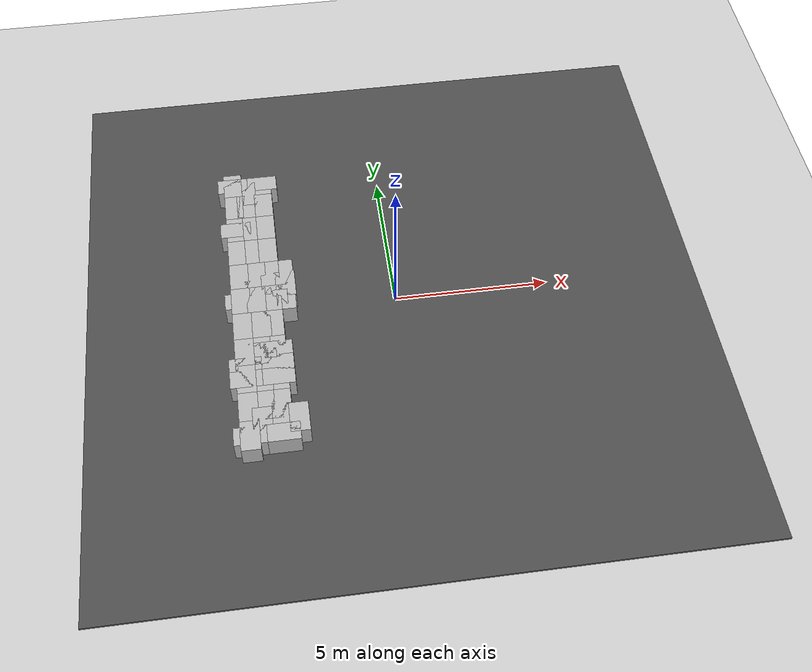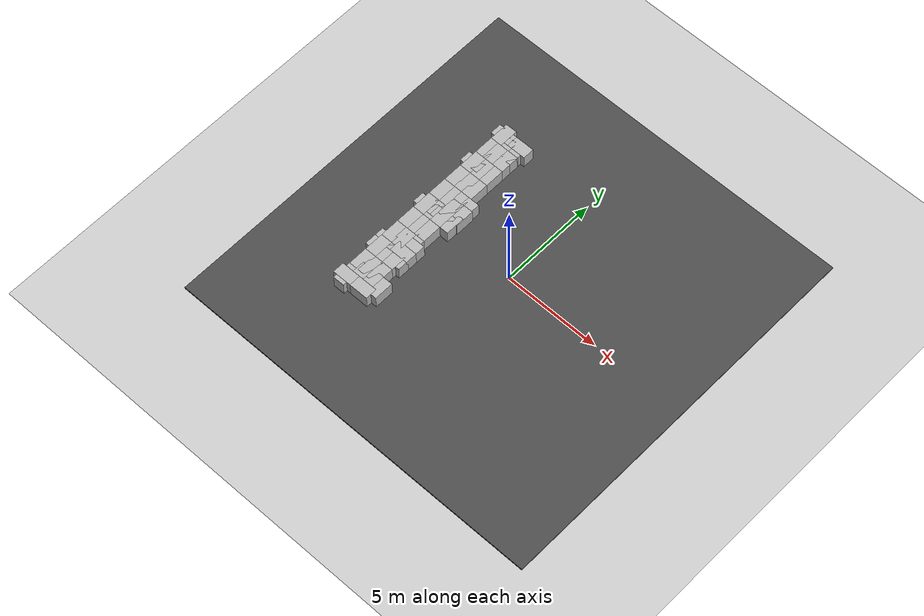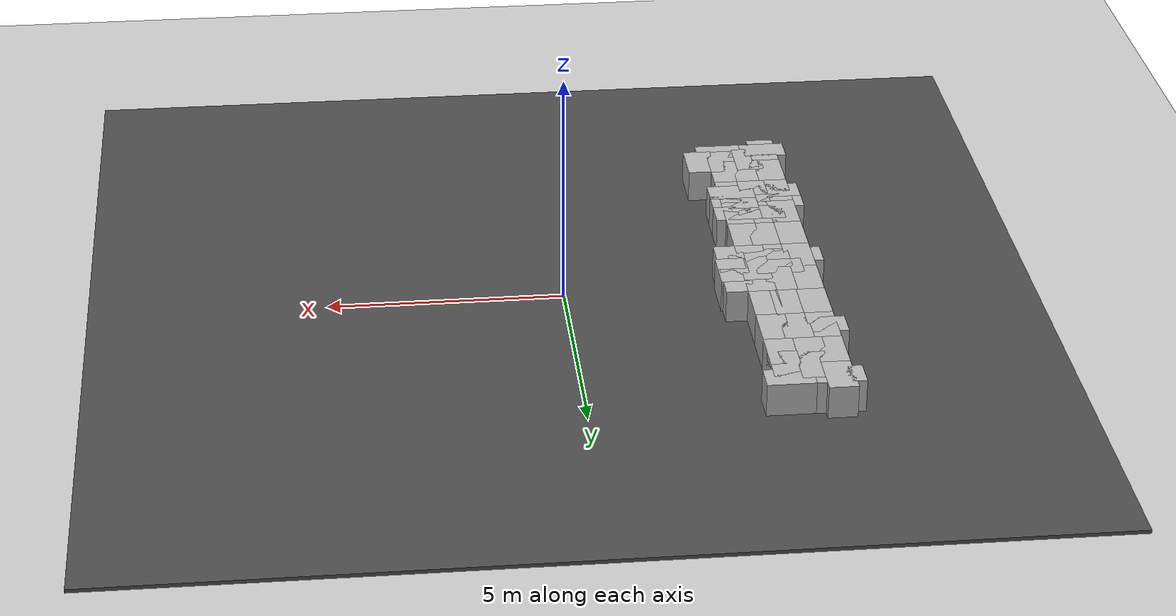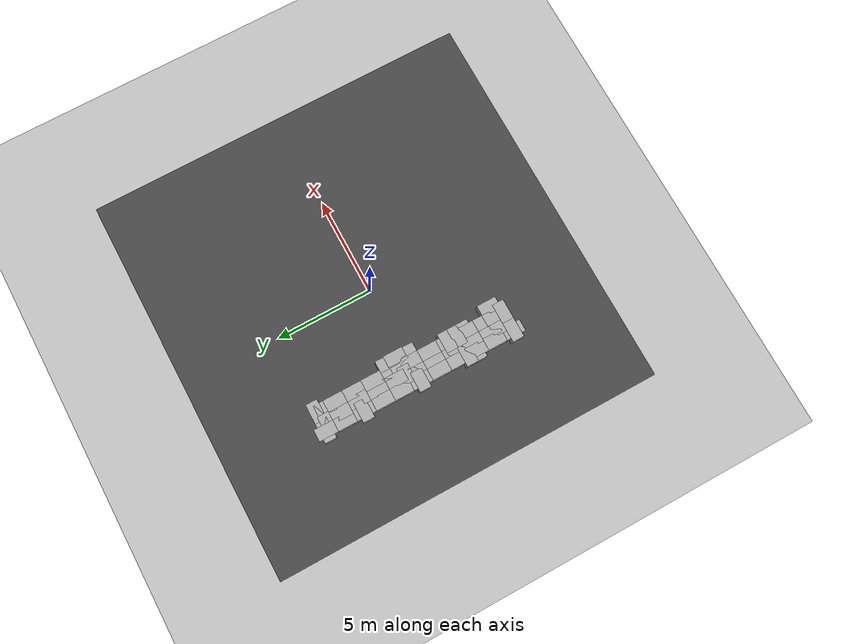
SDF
<sdf version="1.4">
 <world name="default">
  <model name="ground_plane">
   <static>1</static>
   <link name="link">
    <collision name="collision">
     <geometry><plane><normal>0 0 1</normal><size>100 100</size></plane></geometry>
     <surface><friction><ode><mu>100</mu><mu2>50</mu2></ode></friction></surface>
    </collision>
    <visual name="visual">
     <cast_shadows>0</cast_shadows>
     <geometry><plane><normal>0 0 1</normal><size>100 100</size></plane></geometry>
     <material>
      <script><uri>file://media/materials/scripts/gazebo.material</uri><name>Gazebo/Grey</name></script>
     </material>
    </visual>
    <velocity_decay><linear>0</linear><angular>0</angular></velocity_decay>
   </link>
  </model>
  <model name="wall_11">
   <static>1</static>
   <link name="link">
    <pose>0 0 0.25 0 -0 0</pose>
    <collision name="collision"><geometry><box><size>1 0.6 1</size></box></geometry></collision>
    <visual name="visual">
     <geometry>
      <mesh><uri>model://brick_box_3x1x3/meshes/simple_box.dae</uri><scale>1 0.6 1</scale></mesh>
     </geometry>
     <material>
      <script>
       <uri>model://brick_box_3x1x3/materials/scripts</uri>
       <uri>model://brick_box_3x1x3/materials/textures</uri>
       <name>BrickBox/Diffuse</name>
      </script>
     </material>
    </visual>
    <velocity_decay><linear>0</linear><angular>0</angular></velocity_decay>
   </link>
   <pose>-4 -5 0 0 -0 0</pose>
  </model>
  <model name="wall_12">
   <static>1</static>
   <link name="link">
    <pose>0 0 0.25 0 -0 0</pose>
    <collision name="collision"><geometry><box><size>1 0.6 1</size></box></geometry></collision>
    <visual name="visual">
     <geometry>
      <mesh><uri>model://brick_box_3x1x3/meshes/simple_box.dae</uri><scale>1 0.6 1</scale></mesh>
     </geometry>
     <material>
      <script>
       <uri>model://brick_box_3x1x3/materials/scripts</uri>
       <uri>model://brick_box_3x1x3/materials/textures</uri>
       <name>BrickBox/Diffuse</name>
      </script>
     </material>
    </visual>
    <velocity_decay><linear>0</linear><angular>0</angular></velocity_decay>
   </link>
   <pose>-5 -5 0 0 -0 0</pose>
  </model>
  <model name="wall_31">
   <static>1</static>
   <link name="link">
    <pose>0 0 0.25 0 -0 0</pose>
    <collision name="collision"><geometry><box><size>1 0.6 1</size></box></geometry></collision>
    <visual name="visual">
     <geometry>
      <mesh><uri>model://brick_box_3x1x3/meshes/simple_box.dae</uri><scale>1 0.6 1</scale></mesh>
     </geometry>
     <material>
      <script>
       <uri>model://brick_box_3x1x3/materials/scripts</uri>
       <uri>model://brick_box_3x1x3/materials/textures</uri>
       <name>BrickBox/Diffuse</name>
      </script>
     </material>
    </visual>
    <velocity_decay><linear>0</linear><angular>0</angular></velocity_decay>
   </link>
   <pose>-4 5 0 0 -0 0</pose>
  </model>
  <model name="wall_32">
   <static>1</static>
   <link name="link">
    <pose>0 0 0.25 0 -0 0</pose>
    <collision name="collision"><geometry><box><size>1 0.6 1</size></box></geometry></collision>
    <visual name="visual">
     <geometry>
      <mesh><uri>model://brick_box_3x1x3/meshes/simple_box.dae</uri><scale>1 0.6 1</scale></mesh>
     </geometry>
     <material>
      <script>
       <uri>model://brick_box_3x1x3/materials/scripts</uri>
       <uri>model://brick_box_3x1x3/materials/textures</uri>
       <name>BrickBox/Diffuse</name>
      </script>
     </material>
    </visual>
    <velocity_decay><linear>0</linear><angular>0</angular></velocity_decay>
   </link>
   <pose>-5 5 0 0 -0 0</pose>
  </model>
  <model name="wall_33">
   <static>1</static>
   <link name="link">
    <pose>0 0 0.25 0 -0 0</pose>
    <collision name="collision"><geometry><box><size>0.6 1 1</size></box></geometry></collision>
    <visual name="visual">
     <geometry>
      <mesh><uri>model://brick_box_3x1x3/meshes/simple_box.dae</uri><scale>0.6 1 1</scale></mesh>
     </geometry>
     <material>
      <script>
       <uri>model://brick_box_3x1x3/materials/scripts</uri>
       <uri>model://brick_box_3x1x3/materials/textures</uri>
       <name>BrickBox/Diffuse</name>
      </script>
     </material>
    </visual>
    <velocity_decay><linear>0</linear><angular>0</angular></velocity_decay>
   </link>
   <pose>-5 -5 0 0 -0 0</pose>
  </model>
  <model name="wall_34">
   <static>1</static>
   <link name="link">
    <pose>0 0 0.25 0 -0 0</pose>
    <collision name="collision"><geometry><box><size>0.6 1 1</size></box></geometry></collision>
    <visual name="visual">
     <geometry>
      <mesh><uri>model://brick_box_3x1x3/meshes/simple_box.dae</uri><scale>0.6 1 1</scale></mesh>
     </geometry>
     <material>
      <script>
       <uri>model://brick_box_3x1x3/materials/scripts</uri>
       <uri>model://brick_box_3x1x3/materials/textures</uri>
       <name>BrickBox/Diffuse</name>
      </script>
     </material>
    </visual>
    <velocity_decay><linear>0</linear><angular>0</angular></velocity_decay>
   </link>
   <pose>-5 -4 0 0 -0 0</pose>
  </model>
  <model name="wall_35">
   <static>1</static>
   <link name="link">
    <pose>0 0 0.25 0 -0 0</pose>
    <collision name="collision"><geometry><box><size>0.6 1 1</size></box></geometry></collision>
    <visual name="visual">
     <geometry>
      <mesh><uri>model://brick_box_3x1x3/meshes/simple_box.dae</uri><scale>0.6 1 1</scale></mesh>
     </geometry>
     <material>
      <script>
       <uri>model://brick_box_3x1x3/materials/scripts</uri>
       <uri>model://brick_box_3x1x3/materials/textures</uri>
       <name>BrickBox/Diffuse</name>
      </script>
     </material>
    </visual>
    <velocity_decay><linear>0</linear><angular>0</angular></velocity_decay>
   </link>
   <pose>-5 -3 0 0 -0 0</pose>
  </model>
  <model name="wall_36">
   <static>1</static>
   <link name="link">
    <pose>0 0 0.25 0 -0 0</pose>
    <collision name="collision"><geometry><box><size>0.6 1 1</size></box></geometry></collision>
    <visual name="visual">
     <geometry>
      <mesh><uri>model://brick_box_3x1x3/meshes/simple_box.dae</uri><scale>0.6 1 1</scale></mesh>
     </geometry>
     <material>
      <script>
       <uri>model://brick_box_3x1x3/materials/scripts</uri>
       <uri>model://brick_box_3x1x3/materials/textures</uri>
       <name>BrickBox/Diffuse</name>
      </script>
     </material>
    </visual>
    <velocity_decay><linear>0</linear><angular>0</angular></velocity_decay>
   </link>
   <pose>-5 -2 0 0 -0 0</pose>
  </model>
  <model name="wall_37">
   <static>1</static>
   <link name="link">
    <pose>0 0 0.25 0 -0 0</pose>
    <collision name="collision"><geometry><box><size>0.6 1 1</size></box></geometry></collision>
    <visual name="visual">
     <geometry>
      <mesh><uri>model://brick_box_3x1x3/meshes/simple_box.dae</uri><scale>0.6 1 1</scale></mesh>
     </geometry>
     <material>
      <script>
       <uri>model://brick_box_3x1x3/materials/scripts</uri>
       <uri>model://brick_box_3x1x3/materials/textures</uri>
       <name>BrickBox/Diffuse</name>
      </script>
     </material>
    </visual>
    <velocity_decay><linear>0</linear><angular>0</angular></velocity_decay>
   </link>
   <pose>-5 -1 0 0 -0 0</pose>
  </model>
  <model name="wall_38">
   <static>1</static>
   <link name="link">
    <pose>0 0 0.25 0 -0 0</pose>
    <collision name="collision"><geometry><box><size>0.6 1 1</size></box></geometry></collision>
    <visual name="visual">
     <geometry>
      <mesh><uri>model://brick_box_3x1x3/meshes/simple_box.dae</uri><scale>0.6 1 1</scale></mesh>
     </geometry>
     <material>
      <script>
       <uri>model://brick_box_3x1x3/materials/scripts</uri>
       <uri>model://brick_box_3x1x3/materials/textures</uri>
       <name>BrickBox/Diffuse</name>
      </script>
     </material>
    </visual>
    <velocity_decay><linear>0</linear><angular>0</angular></velocity_decay>
   </link>
   <pose>-5 0 0 0 -0 0</pose>
  </model>
  <model name="wall_39">
   <static>1</static>
   <link name="link">
    <pose>0 0 0.25 0 -0 0</pose>
    <collision name="collision"><geometry><box><size>0.6 1 1</size></box></geometry></collision>
    <visual name="visual">
     <geometry>
      <mesh><uri>model://brick_box_3x1x3/meshes/simple_box.dae</uri><scale>0.6 1 1</scale></mesh>
     </geometry>
     <material>
      <script>
       <uri>model://brick_box_3x1x3/materials/scripts</uri>
       <uri>model://brick_box_3x1x3/materials/textures</uri>
       <name>BrickBox/Diffuse</name>
      </script>
     </material>
    </visual>
    <velocity_decay><linear>0</linear><angular>0</angular></velocity_decay>
   </link>
   <pose>-5 1 0 0 -0 0</pose>
  </model>
  <model name="wall_40">
   <static>1</static>
   <link name="link">
    <pose>0 0 0.25 0 -0 0</pose>
    <collision name="collision"><geometry><box><size>0.6 1 1</size></box></geometry></collision>
    <visual name="visual">
     <geometry>
      <mesh><uri>model://brick_box_3x1x3/meshes/simple_box.dae</uri><scale>0.6 1 1</scale></mesh>
     </geometry>
     <material>
      <script>
       <uri>model://brick_box_3x1x3/materials/scripts</uri>
       <uri>model://brick_box_3x1x3/materials/textures</uri>
       <name>BrickBox/Diffuse</name>
      </script>
     </material>
    </visual>
    <velocity_decay><linear>0</linear><angular>0</angular></velocity_decay>
   </link>
   <pose>-5 2 0 0 -0 0</pose>
  </model>
  <model name="wall_41">
   <static>1</static>
   <link name="link">
    <pose>0 0 0.25 0 -0 0</pose>
    <collision name="collision"><geometry><box><size>0.6 1 1</size></box></geometry></collision>
    <visual name="visual">
     <geometry>
      <mesh><uri>model://brick_box_3x1x3/meshes/simple_box.dae</uri><scale>0.6 1 1</scale></mesh>
     </geometry>
     <material>
      <script>
       <uri>model://brick_box_3x1x3/materials/scripts</uri>
       <uri>model://brick_box_3x1x3/materials/textures</uri>
       <name>BrickBox/Diffuse</name>
      </script>
     </material>
    </visual>
    <velocity_decay><linear>0</linear><angular>0</angular></velocity_decay>
   </link>
   <pose>-5 3 0 0 -0 0</pose>
  </model>
  <model name="wall_42">
   <static>1</static>
   <link name="link">
    <pose>0 0 0.25 0 -0 0</pose>
    <collision name="collision"><geometry><box><size>0.6 1 1</size></box></geometry></collision>
    <visual name="visual">
     <geometry>
      <mesh><uri>model://brick_box_3x1x3/meshes/simple_box.dae</uri><scale>0.6 1 1</scale></mesh>
     </geometry>
     <material>
      <script>
       <uri>model://brick_box_3x1x3/materials/scripts</uri>
       <uri>model://brick_box_3x1x3/materials/textures</uri>
       <name>BrickBox/Diffuse</name>
      </script>
     </material>
    </visual>
    <velocity_decay><linear>0</linear><angular>0</angular></velocity_decay>
   </link>
   <pose>-5 4 0 0 -0 0</pose>
  </model>
  <model name="wall_43">
   <static>1</static>
   <link name="link">
    <pose>0 0 0.25 0 -0 0</pose>
    <collision name="collision"><geometry><box><size>0.6 1 1</size></box></geometry></collision>
    <visual name="visual">
     <geometry>
      <mesh><uri>model://brick_box_3x1x3/meshes/simple_box.dae</uri><scale>0.6 1 1</scale></mesh>
     </geometry>
     <material>
      <script>
       <uri>model://brick_box_3x1x3/materials/scripts</uri>
       <uri>model://brick_box_3x1x3/materials/textures</uri>
       <name>BrickBox/Diffuse</name>
      </script>
     </material>
    </visual>
    <velocity_decay><linear>0</linear><angular>0</angular></velocity_decay>
   </link>
   <pose>-5 5 0 0 -0 0</pose>
  </model>
  <model name="wall">
   <static>1</static>
   <link name="link">
    <pose>0 0 0.25 0 -0 0</pose>
    <collision name="collision"><geometry><box><size>1 0.6 1</size></box></geometry></collision>
    <visual name="visual">
     <geometry>
      <mesh><uri>model://brick_box_3x1x3/meshes/simple_box.dae</uri><scale>1 0.6 1</scale></mesh>
     </geometry>
     <material>
      <script>
       <uri>model://brick_box_3x1x3/materials/scripts</uri>
       <uri>model://brick_box_3x1x3/materials/textures</uri>
       <name>BrickBox/Diffuse</name>
      </script>
     </material>
    </visual>
    <velocity_decay><linear>0</linear><angular>0</angular></velocity_decay>
   </link>
   <pose>-5 0 0 0 -0 0</pose>
  </model>
  <model name="wall_44">
   <static>1</static>
   <link name="link">
    <pose>0 0 0.25 0 -0 0</pose>
    <collision name="collision"><geometry><box><size>1 0.6 1</size></box></geometry></collision>
    <visual name="visual">
     <geometry>
      <mesh><uri>model://brick_box_3x1x3/meshes/simple_box.dae</uri><scale>1 0.6 1</scale></mesh>
     </geometry>
     <material>
      <script>
       <uri>model://brick_box_3x1x3/materials/scripts</uri>
       <uri>model://brick_box_3x1x3/materials/textures</uri>
       <name>BrickBox/Diffuse</name>
      </script>
     </material>
    </visual>
    <velocity_decay><linear>0</linear><angular>0</angular></velocity_decay>
   </link>
   <pose>-4 0 0 0 -0 0</pose>
  </model>
  <model name="wall_69">
   <static>1</static>
   <link name="link">
    <pose>0 0 0.25 0 -0 0</pose>
    <collision name="collision"><geometry><box><size>1 0.6 1</size></box></geometry></collision>
    <visual name="visual">
     <geometry>
      <mesh><uri>model://brick_box_3x1x3/meshes/simple_box.dae</uri><scale>1 0.6 1</scale></mesh>
     </geometry>
     <material>
      <script>
       <uri>model://brick_box_3x1x3/materials/scripts</uri>
       <uri>model://brick_box_3x1x3/materials/textures</uri>
       <name>BrickBox/Diffuse</name>
      </script>
     </material>
    </visual>
    <velocity_decay><linear>0</linear><angular>0</angular></velocity_decay>
   </link>
   <pose>-5 -3 0 0 -0 0</pose>
  </model>
  <model name="wall_70">
   <static>1</static>
   <link name="link">
    <pose>0 0 0.25 0 -0 0</pose>
    <collision name="collision"><geometry><box><size>1 0.6 1</size></box></geometry></collision>
    <visual name="visual">
     <geometry>
      <mesh><uri>model://brick_box_3x1x3/meshes/simple_box.dae</uri><scale>1 0.6 1</scale></mesh>
     </geometry>
     <material>
      <script>
       <uri>model://brick_box_3x1x3/materials/scripts</uri>
       <uri>model://brick_box_3x1x3/materials/textures</uri>
       <name>BrickBox/Diffuse</name>
      </script>
     </material>
    </visual>
    <velocity_decay><linear>0</linear><angular>0</angular></velocity_decay>
   </link>
   <pose>-4 -3 0 0 -0 0</pose>
  </model>
  <model name="wall_71">
   <static>1</static>
   <link name="link">
    <pose>0 0 0.25 0 -0 0</pose>
    <collision name="collision"><geometry><box><size>1 0.6 1</size></box></geometry></collision>
    <visual name="visual">
     <geometry>
      <mesh><uri>model://brick_box_3x1x3/meshes/simple_box.dae</uri><scale>1 0.6 1</scale></mesh>
     </geometry>
     <material>
      <script>
       <uri>model://brick_box_3x1x3/materials/scripts</uri>
       <uri>model://brick_box_3x1x3/materials/textures</uri>
       <name>BrickBox/Diffuse</name>
      </script>
     </material>
    </visual>
    <velocity_decay><linear>0</linear><angular>0</angular></velocity_decay>
   </link>
   <pose>-5 3 0 0 -0 0</pose>
  </model>
  <model name="wall_112">
   <static>1</static>
   <link name="link">
    <pose>0 0 0.25 0 -0 0</pose>
    <collision name="collision"><geometry><box><size>0.6 1 1</size></box></geometry></collision>
    <visual name="visual">
     <geometry>
      <mesh><uri>model://brick_box_3x1x3/meshes/simple_box.dae</uri><scale>0.6 1 1</scale></mesh>
     </geometry>
     <material>
      <script>
       <uri>model://brick_box_3x1x3/materials/scripts</uri>
       <uri>model://brick_box_3x1x3/materials/textures</uri>
       <name>BrickBox/Diffuse</name>
      </script>
     </material>
    </visual>
    <velocity_decay><linear>0</linear><angular>0</angular></velocity_decay>
   </link>
   <pose>-3.54613 1 0 0 -0 0</pose>
  </model>
  <model name="wall_113">
   <static>1</static>
   <link name="link">
    <pose>0 0 0.25 0 -0 0</pose>
    <collision name="collision"><geometry><box><size>0.6 1 1</size></box></geometry></collision>
    <visual name="visual">
     <geometry>
      <mesh><uri>model://brick_box_3x1x3/meshes/simple_box.dae</uri><scale>0.6 1 1</scale></mesh>
     </geometry>
     <material>
      <script>
       <uri>model://brick_box_3x1x3/materials/scripts</uri>
       <uri>model://brick_box_3x1x3/materials/textures</uri>
       <name>BrickBox/Diffuse</name>
      </script>
     </material>
    </visual>
    <velocity_decay><linear>0</linear><angular>0</angular></velocity_decay>
   </link>
   <pose>-4 1 0 0 -0 0</pose>
  </model>
  <model name="wall_114">
   <static>1</static>
   <link name="link">
    <pose>0 0 0.25 0 -0 0</pose>
    <collision name="collision"><geometry><box><size>0.6 1 1</size></box></geometry></collision>
    <visual name="visual">
     <geometry>
      <mesh><uri>model://brick_box_3x1x3/meshes/simple_box.dae</uri><scale>0.6 1 1</scale></mesh>
     </geometry>
     <material>
      <script>
       <uri>model://brick_box_3x1x3/materials/scripts</uri>
       <uri>model://brick_box_3x1x3/materials/textures</uri>
       <name>BrickBox/Diffuse</name>
      </script>
     </material>
    </visual>
    <velocity_decay><linear>0</linear><angular>0</angular></velocity_decay>
   </link>
   <pose>-4.44163 1 0 0 -0 0</pose>
  </model>
  <model name="wall_115">
   <static>1</static>
   <link name="link">
    <pose>0 0 0.25 0 -0 0</pose>
    <collision name="collision"><geometry><box><size>1 0.6 1</size></box></geometry></collision>
    <visual name="visual">
     <geometry>
      <mesh><uri>model://brick_box_3x1x3/meshes/simple_box.dae</uri><scale>1 0.6 1</scale></mesh>
     </geometry>
     <material>
      <script>
       <uri>model://brick_box_3x1x3/materials/scripts</uri>
       <uri>model://brick_box_3x1x3/materials/textures</uri>
       <name>BrickBox/Diffuse</name>
      </script>
     </material>
    </visual>
    <velocity_decay><linear>0</linear><angular>0</angular></velocity_decay>
   </link>
   <pose>-4.50955 0.466404 0 0 -0 0</pose>
  </model>
  <model name="wall_116">
   <static>1</static>
   <link name="link">
    <pose>0 0 0.25 0 -0 0</pose>
    <collision name="collision"><geometry><box><size>0.6 1 1</size></box></geometry></collision>
    <visual name="visual">
     <geometry>
      <mesh><uri>model://brick_box_3x1x3/meshes/simple_box.dae</uri><scale>0.6 1 1</scale></mesh>
     </geometry>
     <material>
      <script>
       <uri>model://brick_box_3x1x3/materials/scripts</uri>
       <uri>model://brick_box_3x1x3/materials/textures</uri>
       <name>BrickBox/Diffuse</name>
      </script>
     </material>
    </visual>
    <velocity_decay><linear>0</linear><angular>0</angular></velocity_decay>
   </link>
   <pose>-4 0.509363 0 0 -0 0</pose>
  </model>
  <model name="wall_117">
   <static>1</static>
   <link name="link">
    <pose>0 0 0.25 0 -0 0</pose>
    <collision name="collision"><geometry><box><size>0.6 1 1</size></box></geometry></collision>
    <visual name="visual">
     <geometry>
      <mesh><uri>model://brick_box_3x1x3/meshes/simple_box.dae</uri><scale>0.6 1 1</scale></mesh>
     </geometry>
     <material>
      <script>
       <uri>model://brick_box_3x1x3/materials/scripts</uri>
       <uri>model://brick_box_3x1x3/materials/textures</uri>
       <name>BrickBox/Diffuse</name>
      </script>
     </material>
    </visual>
    <velocity_decay><linear>0</linear><angular>0</angular></velocity_decay>
   </link>
   <pose>-3.50855 0.549133 0 0 -0 0</pose>
  </model>
  <model name="wall_132">
   <static>1</static>
   <link name="link">
    <pose>0 0 0.25 0 -0 0</pose>
    <collision name="collision"><geometry><box><size>0.6 1 1</size></box></geometry></collision>
    <visual name="visual">
     <geometry>
      <mesh><uri>model://brick_box_3x1x3/meshes/simple_box.dae</uri><scale>0.6 1 1</scale></mesh>
     </geometry>
     <material>
      <script>
       <uri>model://brick_box_3x1x3/materials/scripts</uri>
       <uri>model://brick_box_3x1x3/materials/textures</uri>
       <name>BrickBox/Diffuse</name>
      </script>
     </material>
    </visual>
    <velocity_decay><linear>0</linear><angular>0</angular></velocity_decay>
   </link>
   <pose>-4 2 0 0 -0 0</pose>
  </model>
  <model name="wall_133">
   <static>1</static>
   <link name="link">
    <pose>0 0 0.25 0 -0 0</pose>
    <collision name="collision"><geometry><box><size>0.6 1 1</size></box></geometry></collision>
    <visual name="visual">
     <geometry>
      <mesh><uri>model://brick_box_3x1x3/meshes/simple_box.dae</uri><scale>0.6 1 1</scale></mesh>
     </geometry>
     <material>
      <script>
       <uri>model://brick_box_3x1x3/materials/scripts</uri>
       <uri>model://brick_box_3x1x3/materials/textures</uri>
       <name>BrickBox/Diffuse</name>
      </script>
     </material>
    </visual>
    <velocity_decay><linear>0</linear><angular>0</angular></velocity_decay>
   </link>
   <pose>-4 4 0 0 -0 0</pose>
  </model>
  <model name="wall_134">
   <static>1</static>
   <link name="link">
    <pose>0 0 0.25 0 -0 0</pose>
    <collision name="collision"><geometry><box><size>0.6 1 1</size></box></geometry></collision>
    <visual name="visual">
     <geometry>
      <mesh><uri>model://brick_box_3x1x3/meshes/simple_box.dae</uri><scale>0.6 1 1</scale></mesh>
     </geometry>
     <material>
      <script>
       <uri>model://brick_box_3x1x3/materials/scripts</uri>
       <uri>model://brick_box_3x1x3/materials/textures</uri>
       <name>BrickBox/Diffuse</name>
      </script>
     </material>
    </visual>
    <velocity_decay><linear>0</linear><angular>0</angular></velocity_decay>
   </link>
   <pose>-4 3 0 0 -0 0</pose>
  </model>
  <model name="wall_135">
   <static>1</static>
   <link name="link">
    <pose>0 0 0.25 0 -0 0</pose>
    <collision name="collision"><geometry><box><size>0.6 1 1</size></box></geometry></collision>
    <visual name="visual">
     <geometry>
      <mesh><uri>model://brick_box_3x1x3/meshes/simple_box.dae</uri><scale>0.6 1 1</scale></mesh>
     </geometry>
     <material>
      <script>
       <uri>model://brick_box_3x1x3/materials/scripts</uri>
       <uri>model://brick_box_3x1x3/materials/textures</uri>
       <name>BrickBox/Diffuse</name>
      </script>
     </material>
    </visual>
    <velocity_decay><linear>0</linear><angular>0</angular></velocity_decay>
   </link>
   <pose>-4.43903 2 0 0 -0 0</pose>
  </model>
  <model name="wall_136">
   <static>1</static>
   <link name="link">
    <pose>0 0 0.25 0 -0 0</pose>
    <collision name="collision"><geometry><box><size>0.6 1 1</size></box></geometry></collision>
    <visual name="visual">
     <geometry>
      <mesh><uri>model://brick_box_3x1x3/meshes/simple_box.dae</uri><scale>0.6 1 1</scale></mesh>
     </geometry>
     <material>
      <script>
       <uri>model://brick_box_3x1x3/materials/scripts</uri>
       <uri>model://brick_box_3x1x3/materials/textures</uri>
       <name>BrickBox/Diffuse</name>
      </script>
     </material>
    </visual>
    <velocity_decay><linear>0</linear><angular>0</angular></velocity_decay>
   </link>
   <pose>-4.45241 3 0 0 -0 0</pose>
  </model>
  <model name="wall_137">
   <static>1</static>
   <link name="link">
    <pose>0 0 0.25 0 -0 0</pose>
    <collision name="collision"><geometry><box><size>0.6 1 1</size></box></geometry></collision>
    <visual name="visual">
     <geometry>
      <mesh><uri>model://brick_box_3x1x3/meshes/simple_box.dae</uri><scale>0.6 1 1</scale></mesh>
     </geometry>
     <material>
      <script>
       <uri>model://brick_box_3x1x3/materials/scripts</uri>
       <uri>model://brick_box_3x1x3/materials/textures</uri>
       <name>BrickBox/Diffuse</name>
      </script>
     </material>
    </visual>
    <velocity_decay><linear>0</linear><angular>0</angular></velocity_decay>
   </link>
   <pose>-4.59276 4 0 0 -0 0</pose>
  </model>
  <model name="wall_138">
   <static>1</static>
   <link name="link">
    <pose>0 0 0.25 0 -0 0</pose>
    <collision name="collision"><geometry><box><size>0.6 1 1</size></box></geometry></collision>
    <visual name="visual">
     <geometry>
      <mesh><uri>model://brick_box_3x1x3/meshes/simple_box.dae</uri><scale>0.6 1 1</scale></mesh>
     </geometry>
     <material>
      <script>
       <uri>model://brick_box_3x1x3/materials/scripts</uri>
       <uri>model://brick_box_3x1x3/materials/textures</uri>
       <name>BrickBox/Diffuse</name>
      </script>
     </material>
    </visual>
    <velocity_decay><linear>0</linear><angular>0</angular></velocity_decay>
   </link>
   <pose>-4.546 4.57871 0 0 -0 0</pose>
  </model>
  <model name="wall_139">
   <static>1</static>
   <link name="link">
    <pose>0 0 0.25 0 -0 0</pose>
    <collision name="collision"><geometry><box><size>0.6 1 1</size></box></geometry></collision>
    <visual name="visual">
     <geometry>
      <mesh><uri>model://brick_box_3x1x3/meshes/simple_box.dae</uri><scale>0.6 1 1</scale></mesh>
     </geometry>
     <material>
      <script>
       <uri>model://brick_box_3x1x3/materials/scripts</uri>
       <uri>model://brick_box_3x1x3/materials/textures</uri>
       <name>BrickBox/Diffuse</name>
      </script>
     </material>
    </visual>
    <velocity_decay><linear>0</linear><angular>0</angular></velocity_decay>
   </link>
   <pose>-4 4.50321 0 0 -0 0</pose>
  </model>
  <model name="wall_143">
   <static>1</static>
   <link name="link">
    <pose>0 0 0.25 0 -0 0</pose>
    <collision name="collision"><geometry><box><size>1 0.6 1</size></box></geometry></collision>
    <visual name="visual">
     <geometry>
      <mesh><uri>model://brick_box_3x1x3/meshes/simple_box.dae</uri><scale>1 0.6 1</scale></mesh>
     </geometry>
     <material>
      <script>
       <uri>model://brick_box_3x1x3/materials/scripts</uri>
       <uri>model://brick_box_3x1x3/materials/textures</uri>
       <name>BrickBox/Diffuse</name>
      </script>
     </material>
    </visual>
    <velocity_decay><linear>0</linear><angular>0</angular></velocity_decay>
   </link>
   <pose>-4 -2 0 0 -0 0</pose>
  </model>
  <model name="wall_144">
   <static>1</static>
   <link name="link">
    <pose>0 0 0.25 0 -0 0</pose>
    <collision name="collision"><geometry><box><size>1 0.6 1</size></box></geometry></collision>
    <visual name="visual">
     <geometry>
      <mesh><uri>model://brick_box_3x1x3/meshes/simple_box.dae</uri><scale>1 0.6 1</scale></mesh>
     </geometry>
     <material>
      <script>
       <uri>model://brick_box_3x1x3/materials/scripts</uri>
       <uri>model://brick_box_3x1x3/materials/textures</uri>
       <name>BrickBox/Diffuse</name>
      </script>
     </material>
    </visual>
    <velocity_decay><linear>0</linear><angular>0</angular></velocity_decay>
   </link>
   <pose>-4 -2.51326 0 0 -0 0</pose>
  </model>
  <model name="wall_145">
   <static>1</static>
   <link name="link">
    <pose>0 0 0.25 0 -0 0</pose>
    <collision name="collision"><geometry><box><size>1 0.6 1</size></box></geometry></collision>
    <visual name="visual">
     <geometry>
      <mesh><uri>model://brick_box_3x1x3/meshes/simple_box.dae</uri><scale>1 0.6 1</scale></mesh>
     </geometry>
     <material>
      <script>
       <uri>model://brick_box_3x1x3/materials/scripts</uri>
       <uri>model://brick_box_3x1x3/materials/textures</uri>
       <name>BrickBox/Diffuse</name>
      </script>
     </material>
    </visual>
    <velocity_decay><linear>0</linear><angular>0</angular></velocity_decay>
   </link>
   <pose>-4.51343 -2 0 0 -0 0</pose>
  </model>
  <model name="wall_146">
   <static>1</static>
   <link name="link">
    <pose>0 0 0.25 0 -0 0</pose>
    <collision name="collision"><geometry><box><size>1 0.6 1</size></box></geometry></collision>
    <visual name="visual">
     <geometry>
      <mesh><uri>model://brick_box_3x1x3/meshes/simple_box.dae</uri><scale>1 0.6 1</scale></mesh>
     </geometry>
     <material>
      <script>
       <uri>model://brick_box_3x1x3/materials/scripts</uri>
       <uri>model://brick_box_3x1x3/materials/textures</uri>
       <name>BrickBox/Diffuse</name>
      </script>
     </material>
    </visual>
    <velocity_decay><linear>0</linear><angular>0</angular></velocity_decay>
   </link>
   <pose>-5 -2.52821 0 0 -0 0</pose>
  </model>
  <model name="wall_75">
   <static>1</static>
   <link name="link">
    <pose>0 0 0.25 0 -0 0</pose>
    <collision name="collision"><geometry><box><size>0.6 1 1</size></box></geometry></collision>
    <visual name="visual">
     <geometry>
      <mesh><uri>model://brick_box_3x1x3/meshes/simple_box.dae</uri><scale>0.6 1 1</scale></mesh>
     </geometry>
     <material>
      <script>
       <uri>model://brick_box_3x1x3/materials/scripts</uri>
       <uri>model://brick_box_3x1x3/materials/textures</uri>
       <name>BrickBox/Diffuse</name>
      </script>
     </material>
    </visual>
    <velocity_decay><linear>0</linear><angular>0</angular></velocity_decay>
   </link>
   <pose>-4 -4 0 0 -0 0</pose>
  </model>
  <model name="wall_76">
   <static>1</static>
   <link name="link">
    <pose>0 0 0.25 0 -0 0</pose>
    <collision name="collision"><geometry><box><size>0.6 1 1</size></box></geometry></collision>
    <visual name="visual">
     <geometry>
      <mesh><uri>model://brick_box_3x1x3/meshes/simple_box.dae</uri><scale>0.6 1 1</scale></mesh>
     </geometry>
     <material>
      <script>
       <uri>model://brick_box_3x1x3/materials/scripts</uri>
       <uri>model://brick_box_3x1x3/materials/textures</uri>
       <name>BrickBox/Diffuse</name>
      </script>
     </material>
    </visual>
    <velocity_decay><linear>0</linear><angular>0</angular></velocity_decay>
   </link>
   <pose>-4 -1 0 0 -0 0</pose>
  </model>
  <model name="wall_80">
   <static>1</static>
   <link name="link">
    <pose>0 0 0.25 0 -0 0</pose>
    <collision name="collision"><geometry><box><size>0.6 1 1</size></box></geometry></collision>
    <visual name="visual">
     <geometry>
      <mesh><uri>model://brick_box_3x1x3/meshes/simple_box.dae</uri><scale>0.6 1 1</scale></mesh>
     </geometry>
     <material>
      <script>
       <uri>model://brick_box_3x1x3/materials/scripts</uri>
       <uri>model://brick_box_3x1x3/materials/textures</uri>
       <name>BrickBox/Diffuse</name>
      </script>
     </material>
    </visual>
    <velocity_decay><linear>0</linear><angular>0</angular></velocity_decay>
   </link>
   <pose>-4.50319 -4 0 0 -0 0</pose>
  </model>
  <model name="wall_82">
   <static>1</static>
   <link name="link">
    <pose>0 0 0.25 0 -0 0</pose>
    <collision name="collision"><geometry><box><size>0.6 1 1</size></box></geometry></collision>
    <visual name="visual">
     <geometry>
      <mesh><uri>model://brick_box_3x1x3/meshes/simple_box.dae</uri><scale>0.6 1 1</scale></mesh>
     </geometry>
     <material>
      <script>
       <uri>model://brick_box_3x1x3/materials/scripts</uri>
       <uri>model://brick_box_3x1x3/materials/textures</uri>
       <name>BrickBox/Diffuse</name>
      </script>
     </material>
    </visual>
    <velocity_decay><linear>0</linear><angular>0</angular></velocity_decay>
   </link>
   <pose>-4.40444 -1 0 0 -0 0</pose>
  </model>
  <model name="wall_83">
   <static>1</static>
   <link name="link">
    <pose>0 0 0.25 0 -0 0</pose>
    <collision name="collision"><geometry><box><size>0.6 1 1</size></box></geometry></collision>
    <visual name="visual">
     <geometry>
      <mesh><uri>model://brick_box_3x1x3/meshes/simple_box.dae</uri><scale>0.6 1 1</scale></mesh>
     </geometry>
     <material>
      <script>
       <uri>model://brick_box_3x1x3/materials/scripts</uri>
       <uri>model://brick_box_3x1x3/materials/textures</uri>
       <name>BrickBox/Diffuse</name>
      </script>
     </material>
    </visual>
    <velocity_decay><linear>0</linear><angular>0</angular></velocity_decay>
   </link>
   <pose>-4.48247 -2 0 0 -0 0</pose>
  </model>
  <model name="wall_87">
   <static>1</static>
   <link name="link">
    <pose>0 0 0.25 0 -0 0</pose>
    <collision name="collision"><geometry><box><size>0.6 1 1</size></box></geometry></collision>
    <visual name="visual">
     <geometry>
      <mesh><uri>model://brick_box_3x1x3/meshes/simple_box.dae</uri><scale>0.6 1 1</scale></mesh>
     </geometry>
     <material>
      <script>
       <uri>model://brick_box_3x1x3/materials/scripts</uri>
       <uri>model://brick_box_3x1x3/materials/textures</uri>
       <name>BrickBox/Diffuse</name>
      </script>
     </material>
    </visual>
    <velocity_decay><linear>0</linear><angular>0</angular></velocity_decay>
   </link>
   <pose>-4 -2 0 0 -0 0</pose>
  </model>
  <model name="wall_88">
   <static>1</static>
   <link name="link">
    <pose>0 0 0.25 0 -0 0</pose>
    <collision name="collision"><geometry><box><size>0.6 1 1</size></box></geometry></collision>
    <visual name="visual">
     <geometry>
      <mesh><uri>model://brick_box_3x1x3/meshes/simple_box.dae</uri><scale>0.6 1 1</scale></mesh>
     </geometry>
     <material>
      <script>
       <uri>model://brick_box_3x1x3/materials/scripts</uri>
       <uri>model://brick_box_3x1x3/materials/textures</uri>
       <name>BrickBox/Diffuse</name>
      </script>
     </material>
    </visual>
    <velocity_decay><linear>0</linear><angular>0</angular></velocity_decay>
   </link>
   <pose>-4.50294 0 0 0 -0 0</pose>
  </model>
  <model name="wall_93">
   <static>1</static>
   <link name="link">
    <pose>0 0 0.25 0 -0 0</pose>
    <collision name="collision"><geometry><box><size>0.6 1 1</size></box></geometry></collision>
    <visual name="visual">
     <geometry>
      <mesh><uri>model://brick_box_3x1x3/meshes/simple_box.dae</uri><scale>0.6 1 1</scale></mesh>
     </geometry>
     <material>
      <script>
       <uri>model://brick_box_3x1x3/materials/scripts</uri>
       <uri>model://brick_box_3x1x3/materials/textures</uri>
       <name>BrickBox/Diffuse</name>
      </script>
     </material>
    </visual>
    <velocity_decay><linear>0</linear><angular>0</angular></velocity_decay>
   </link>
   <pose>-4 0 0 0 -0 0</pose>
  </model>
  <model name="wall_105">
   <static>1</static>
   <link name="link">
    <pose>0 0 0.25 0 -0 0</pose>
    <collision name="collision"><geometry><box><size>0.6 1 1</size></box></geometry></collision>
    <visual name="visual">
     <geometry>
      <mesh><uri>model://brick_box_3x1x3/meshes/simple_box.dae</uri><scale>0.6 1 1</scale></mesh>
     </geometry>
     <material>
      <script>
       <uri>model://brick_box_3x1x3/materials/scripts</uri>
       <uri>model://brick_box_3x1x3/materials/textures</uri>
       <name>BrickBox/Diffuse</name>
      </script>
     </material>
    </visual>
    <velocity_decay><linear>0</linear><angular>0</angular></velocity_decay>
   </link>
   <pose>-4 -3 0 0 -0 0</pose>
  </model>
  <model name="wall_109">
   <static>1</static>
   <link name="link">
    <pose>0 0 0.25 0 -0 0</pose>
    <collision name="collision"><geometry><box><size>0.6 1 1</size></box></geometry></collision>
    <visual name="visual">
     <geometry>
      <mesh><uri>model://brick_box_3x1x3/meshes/simple_box.dae</uri><scale>0.6 1 1</scale></mesh>
     </geometry>
     <material>
      <script>
       <uri>model://brick_box_3x1x3/materials/scripts</uri>
       <uri>model://brick_box_3x1x3/materials/textures</uri>
       <name>BrickBox/Diffuse</name>
      </script>
     </material>
    </visual>
    <velocity_decay><linear>0</linear><angular>0</angular></velocity_decay>
   </link>
   <pose>-4 -4.50947 0 0 -0 0</pose>
  </model>
  <model name="wall_110">
   <static>1</static>
   <link name="link">
    <pose>0 0 0.25 0 -0 0</pose>
    <collision name="collision"><geometry><box><size>0.6 1 1</size></box></geometry></collision>
    <visual name="visual">
     <geometry>
      <mesh><uri>model://brick_box_3x1x3/meshes/simple_box.dae</uri><scale>0.6 1 1</scale></mesh>
     </geometry>
     <material>
      <script>
       <uri>model://brick_box_3x1x3/materials/scripts</uri>
       <uri>model://brick_box_3x1x3/materials/textures</uri>
       <name>BrickBox/Diffuse</name>
      </script>
     </material>
    </visual>
    <velocity_decay><linear>0</linear><angular>0</angular></velocity_decay>
   </link>
   <pose>-4.4938 -3 0 0 -0 0</pose>
  </model>
  <model name="wall_140">
   <static>1</static>
   <link name="link">
    <pose>0 0 0.25 0 -0 0</pose>
    <collision name="collision"><geometry><box><size>0.6 1 1</size></box></geometry></collision>
    <visual name="visual">
     <geometry>
      <mesh><uri>model://brick_box_3x1x3/meshes/simple_box.dae</uri><scale>0.6 1 1</scale></mesh>
     </geometry>
     <material>
      <script>
       <uri>model://brick_box_3x1x3/materials/scripts</uri>
       <uri>model://brick_box_3x1x3/materials/textures</uri>
       <name>BrickBox/Diffuse</name>
      </script>
     </material>
    </visual>
    <velocity_decay><linear>0</linear><angular>0</angular></velocity_decay>
   </link>
   <pose>-4.59548 -4.56994 0 0 -0 0</pose>
  </model>
  <model name="wall_147">
   <static>1</static>
   <link name="link">
    <pose>0 0 0.25 0 -0 0</pose>
    <collision name="collision"><geometry><box><size>0.6 1 1</size></box></geometry></collision>
    <visual name="visual">
     <geometry>
      <mesh><uri>model://brick_box_3x1x3/meshes/simple_box.dae</uri><scale>0.6 1 1</scale></mesh>
     </geometry>
     <material>
      <script>
       <uri>model://brick_box_3x1x3/materials/scripts</uri>
       <uri>model://brick_box_3x1x3/materials/textures</uri>
       <name>BrickBox/Diffuse</name>
      </script>
     </material>
    </visual>
    <velocity_decay><linear>0</linear><angular>0</angular></velocity_decay>
   </link>
   <pose>-3.50192 -4.52981 0 0 -0 0</pose>
  </model>
  <model name="wall_165">
   <static>1</static>
   <link name="link">
    <pose>0 0 0.25 0 -0 0</pose>
    <collision name="collision"><geometry><box><size>0.6 1 1</size></box></geometry></collision>
    <visual name="visual">
     <geometry>
      <mesh><uri>model://brick_box_3x1x3/meshes/simple_box.dae</uri><scale>0.6 1 1</scale></mesh>
     </geometry>
     <material>
      <script>
       <uri>model://brick_box_3x1x3/materials/scripts</uri>
       <uri>model://brick_box_3x1x3/materials/textures</uri>
       <name>BrickBox/Diffuse</name>
      </script>
     </material>
    </visual>
    <velocity_decay><linear>0</linear><angular>0</angular></velocity_decay>
   </link>
   <pose>-3.54514 0 0 0 -0 0</pose>
  </model>
  <model name="asphalt_plane">
   <static>1</static>
   <link name="link">
    <collision name="collision"><geometry><box><size>20 20 0.1</size></box></geometry></collision>
    <visual name="visual">
     <cast_shadows>0</cast_shadows>
     <geometry><box><size>20 20 0.1</size></box></geometry>
     <material>
      <script>
       <uri>model://asphalt_plane/materials/scripts</uri>
       <uri>model://asphalt_plane/materials/textures</uri>
       <name>vrc/asphalt</name>
      </script>
     </material>
    </visual>
    <velocity_decay><linear>0</linear><angular>0</angular></velocity_decay>
   </link>
  </model>
 </world>
</sdf>
